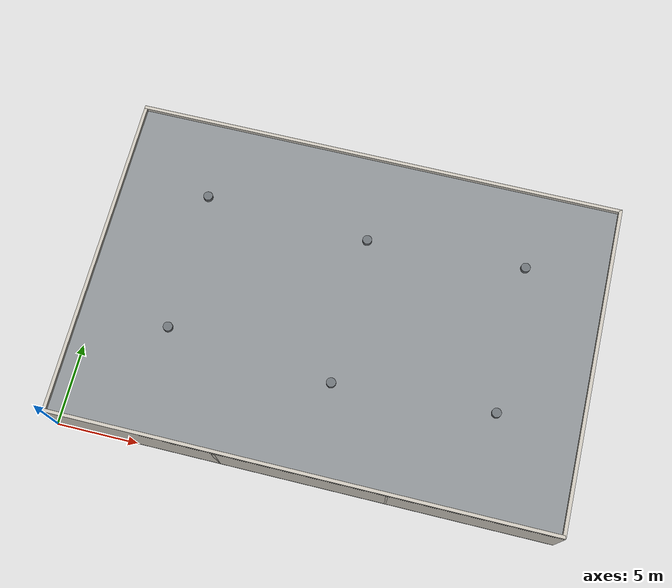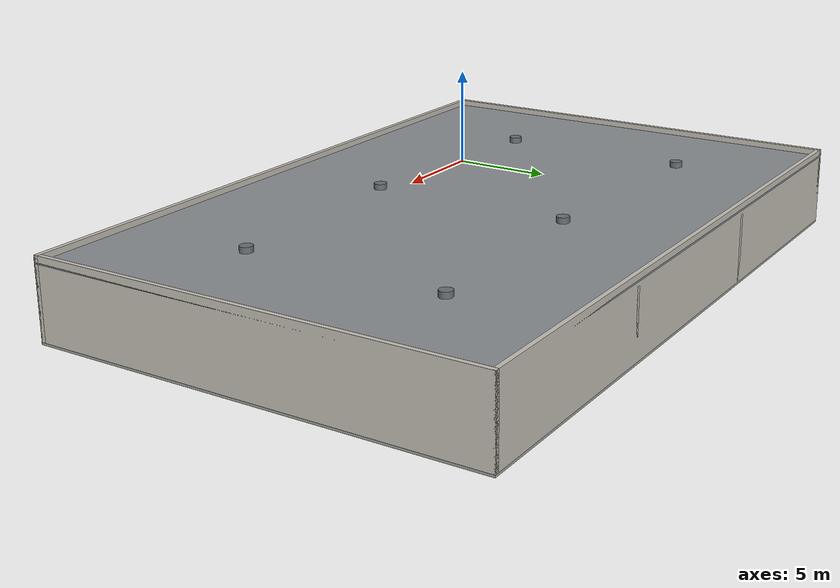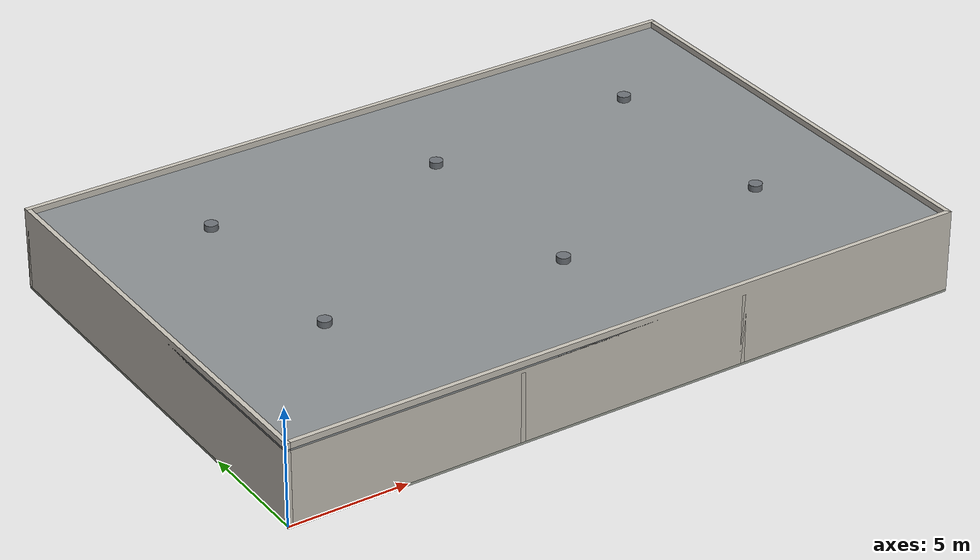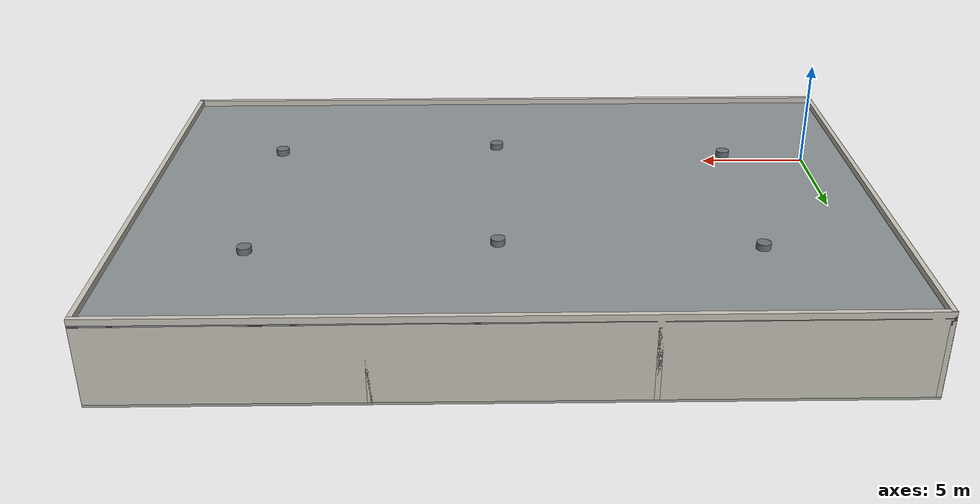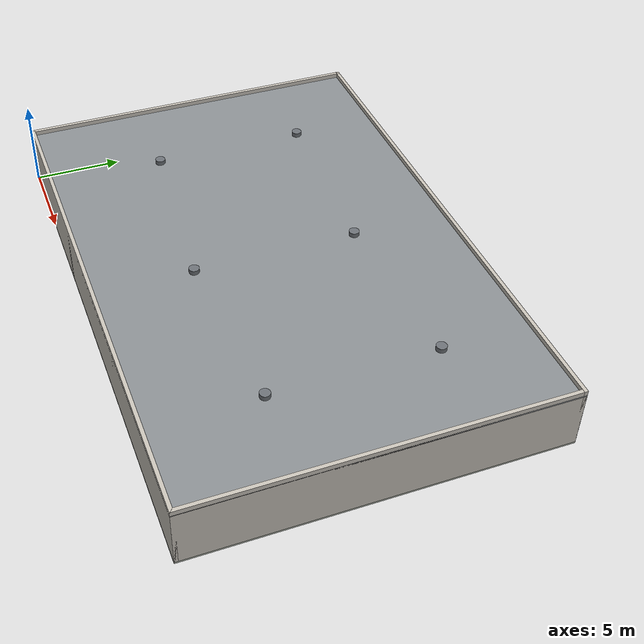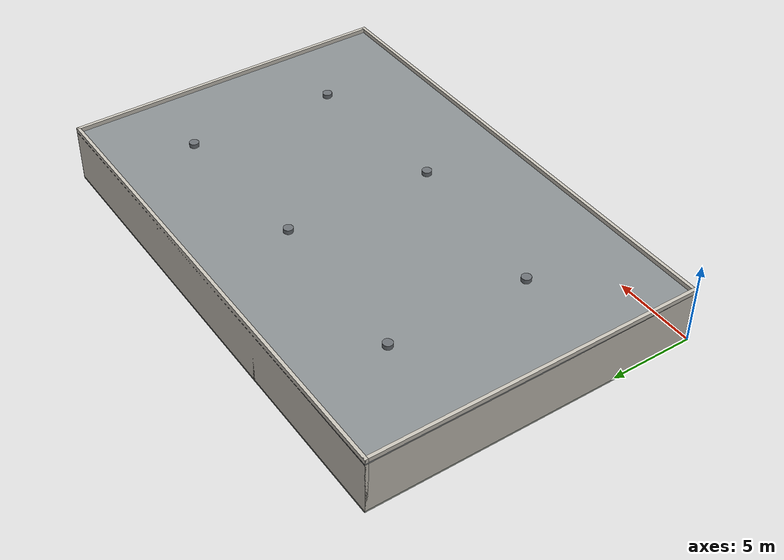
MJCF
<mujoco model="lingtu_industrial_demo">
  <compiler angle="radian" autolimits="true"/>
  <option gravity="0 0 -9.81" timestep="0.002" integrator="RK4"/>

  <visual>
    <headlight diffuse="0.65 0.65 0.62" ambient="0.35 0.35 0.35" specular="0.0 0.0 0.0"/>
    <rgba haze="0.12 0.15 0.18 1"/>
    <global azimuth="-45" elevation="-22" fovy="55"/>
  </visual>

  <asset>
    <material name="floor_mat" rgba=".62 .64 .60 1" shininess="0.02" specular="0.05"/>
    <material name="wall_mat" rgba=".78 .76 .72 1" shininess="0.02" specular="0.05"/>
    <material name="machine_mat" rgba=".25 .38 .46 1" shininess="0.06" specular="0.08"/>
    <material name="shelf_mat" rgba=".46 .34 .22 1" shininess="0.03" specular="0.05"/>
    <material name="barrel_mat" rgba=".70 .58 .12 1" shininess="0.04" specular="0.08"/>
    <material name="column_mat" rgba=".42 .44 .46 1" shininess="0.03" specular="0.05"/>
    <material name="robot_mat" rgba=".18 .38 .76 1"/>
    <material name="start_mat" rgba=".15 .78 .28 0.85"/>
    <material name="goal_mat" rgba=".90 .12 .12 0.90"/>
  </asset>

  <worldbody>
    <geom name="floor_main" type="box" pos="15 10 -0.05" size="15 10 0.05"
          material="floor_mat" conaffinity="1" condim="3"/>

    <geom name="wall_south" type="box" pos="15 0.10 1.75" size="15 0.10 1.75" material="wall_mat" conaffinity="1"/>
    <geom name="wall_north" type="box" pos="15 19.90 1.75" size="15 0.10 1.75" material="wall_mat" conaffinity="1"/>
    <geom name="wall_west" type="box" pos="0.10 10 1.75" size="0.10 10 1.75" material="wall_mat" conaffinity="1"/>
    <geom name="wall_east" type="box" pos="29.90 10 1.75" size="0.10 10 1.75" material="wall_mat" conaffinity="1"/>

    <geom name="roof_deck_main" type="box" pos="15.0 10.0 3.20" size="15.0 10.0 0.04"
          rgba=".54 .56 .57 1" conaffinity="1" condim="3"/>
    <geom name="roof_skylight_gap_a" type="box" pos="7.0 10.0 3.12" size="1.6 8.0 0.035"
          rgba=".68 .76 .82 1" conaffinity="1" condim="3"/>
    <geom name="roof_skylight_gap_b" type="box" pos="21.8 10.0 3.12" size="1.8 8.0 0.035"
          rgba=".68 .76 .82 1" conaffinity="1" condim="3"/>
    <geom name="beam_start_x" type="box" pos="4.8 3.4 2.35" size="2.4 0.08 0.08"
          material="column_mat" conaffinity="1" condim="3"/>
    <geom name="beam_start_y" type="box" pos="3.3 4.7 2.20" size="0.08 2.1 0.08"
          material="column_mat" conaffinity="1" condim="3"/>
    <geom name="beam_mid_x" type="box" pos="15.0 9.6 2.45" size="3.8 0.08 0.08"
          material="column_mat" conaffinity="1" condim="3"/>
    <geom name="beam_mid_y" type="box" pos="17.1 12.0 2.30" size="0.08 2.6 0.08"
          material="column_mat" conaffinity="1" condim="3"/>
    <geom name="beam_warehouse_x" type="box" pos="24.8 9.0 2.55" size="3.2 0.08 0.08"
          material="column_mat" conaffinity="1" condim="3"/>
    <geom name="beam_warehouse_y" type="box" pos="22.0 13.5 2.35" size="0.08 3.0 0.08"
          material="column_mat" conaffinity="1" condim="3"/>
    <geom name="pipe_run_a" type="cylinder" pos="6.0 10.0 2.65" size="0.07 8.5"
          euler="1.5708 0 0" material="column_mat" conaffinity="1" condim="3"/>
    <geom name="pipe_run_b" type="cylinder" pos="15.0 10.0 2.72" size="0.06 9.0"
          euler="1.5708 0 0" material="column_mat" conaffinity="1" condim="3"/>
    <geom name="pipe_run_c" type="cylinder" pos="24.0 10.0 2.68" size="0.07 8.5"
          euler="1.5708 0 0" material="column_mat" conaffinity="1" condim="3"/>
    <geom name="duct_start" type="box" pos="4.5 11.0 2.55" size="1.8 0.22 0.16"
          rgba=".42 .47 .48 1" conaffinity="1" condim="3"/>
    <geom name="duct_mid" type="box" pos="14.5 3.6 2.58" size="2.4 0.22 0.16"
          rgba=".42 .47 .48 1" conaffinity="1" condim="3"/>
    <geom name="duct_ship" type="box" pos="24.5 14.0 2.60" size="2.6 0.22 0.16"
          rgba=".42 .47 .48 1" conaffinity="1" condim="3"/>
    <geom name="ceiling_patch_start" type="box" pos="4.4 5.2 2.80" size="1.2 0.9 0.04"
          rgba=".52 .55 .57 1" conaffinity="1" condim="3"/>
    <geom name="ceiling_patch_mid" type="box" pos="15.8 11.2 2.90" size="1.6 1.0 0.04"
          rgba=".52 .55 .57 1" conaffinity="1" condim="3"/>

    <!-- Internal partitions with doors, creating three exploration zones. -->
    <geom name="partition_a_low" type="box" pos="10 2.0 1.50" size="0.10 2.0 1.50" material="wall_mat" conaffinity="1"/>
    <geom name="partition_a_mid" type="box" pos="10 10.5 1.50" size="0.10 3.5 1.50" material="wall_mat" conaffinity="1"/>
    <geom name="partition_a_high" type="box" pos="10 18.0 1.50" size="0.10 2.0 1.50" material="wall_mat" conaffinity="1"/>
    <geom name="partition_b_low" type="box" pos="20 4.0 1.50" size="0.10 4.0 1.50" material="wall_mat" conaffinity="1"/>
    <geom name="partition_b_high" type="box" pos="20 15.5 1.50" size="0.10 4.5 1.50" material="wall_mat" conaffinity="1"/>

    <!-- Structural columns break up long planar corridors. -->
    <geom name="col_1" type="cylinder" pos="5.5 6.5 1.75" size="0.28 1.75" material="column_mat" conaffinity="1"/>
    <geom name="col_2" type="cylinder" pos="5.5 15.0 1.75" size="0.28 1.75" material="column_mat" conaffinity="1"/>
    <geom name="col_3" type="cylinder" pos="15.5 5.5 1.75" size="0.28 1.75" material="column_mat" conaffinity="1"/>
    <geom name="col_4" type="cylinder" pos="15.5 14.5 1.75" size="0.28 1.75" material="column_mat" conaffinity="1"/>
    <geom name="col_5" type="cylinder" pos="25.0 6.0 1.75" size="0.28 1.75" material="column_mat" conaffinity="1"/>
    <geom name="col_6" type="cylinder" pos="25.0 15.0 1.75" size="0.28 1.75" material="column_mat" conaffinity="1"/>

    <!-- Start zone equipment. -->
    <geom name="starter_diag_guardrail_1" type="box" pos="4.20 4.95 0.85"
          euler="0 0 0.68" size="0.10 1.35 0.85" material="machine_mat"
          conaffinity="1" condim="3"/>
    <geom name="starter_diag_guardrail_2" type="box" pos="6.70 2.75 0.95"
          euler="0 0 -0.52" size="0.10 1.05 0.95" material="machine_mat"
          conaffinity="1" condim="3"/>
    <geom name="starter_short_rack" type="box" pos="3.20 1.85 0.75"
          euler="0 0 0.18" size="0.85 0.30 0.75" material="shelf_mat"
          conaffinity="1" condim="3"/>
    <geom name="starter_column_a" type="cylinder" pos="3.35 5.95 1.35"
          size="0.22 1.35" material="column_mat" conaffinity="1" condim="3"/>
    <geom name="starter_column_b" type="cylinder" pos="6.10 6.25 1.10"
          size="0.18 1.10" material="column_mat" conaffinity="1" condim="3"/>
    <geom name="starter_low_crate" type="box" pos="5.60 1.55 0.35"
          euler="0 0 -0.30" size="0.42 0.55 0.35" rgba=".35 .48 .55 1"
          conaffinity="1" condim="3"/>
    <geom name="crate_a1" type="box" pos="4.0 7.8 0.45" size="0.55 0.45 0.45" material="shelf_mat" conaffinity="1" condim="3"/>
    <geom name="crate_a2" type="box" pos="7.0 4.5 0.45" size="0.60 0.50 0.45" material="shelf_mat" conaffinity="1" condim="3"/>
    <geom name="barrel_a1" type="cylinder" pos="3.5 12.0 0.55" size="0.35 0.55" material="barrel_mat" conaffinity="1" condim="3"/>
    <geom name="shelf_a1" type="box" pos="7.2 16.6 0.90" size="1.25 0.45 0.90" material="shelf_mat" conaffinity="1" condim="3"/>

    <!-- Middle production area. -->
    <geom name="machine_b1" type="box" pos="14.2 8.5 0.85" size="1.60 0.75 0.85" material="machine_mat" conaffinity="1" condim="3"/>
    <geom name="machine_b1_top" type="box" pos="14.8 8.2 1.90" size="0.80 0.45 0.35" material="machine_mat" conaffinity="1" condim="3"/>
    <geom name="machine_b2" type="box" pos="17.3 12.4 0.70" size="0.75 1.55 0.70" material="machine_mat" conaffinity="1" condim="3"/>
    <geom name="belt_b1" type="box" pos="15.0 17.2 0.60" size="3.2 0.35 0.60" rgba=".18 .18 .18 1" conaffinity="1" condim="3"/>
    <geom name="barrel_b1" type="cylinder" pos="12.4 3.0 0.55" size="0.32 0.55" material="barrel_mat" conaffinity="1" condim="3"/>
    <geom name="barrel_b2" type="cylinder" pos="18.2 4.6 0.55" size="0.32 0.55" material="barrel_mat" conaffinity="1" condim="3"/>

    <!-- Warehouse / shipping zone. -->
    <geom name="rack_c1" type="box" pos="23.0 4.0 1.10" size="0.45 2.00 1.10" material="shelf_mat" conaffinity="1" condim="3"/>
    <geom name="rack_c2" type="box" pos="26.5 4.0 1.10" size="0.45 2.00 1.10" material="shelf_mat" conaffinity="1" condim="3"/>
    <geom name="rack_c3" type="box" pos="23.0 11.0 1.10" size="0.45 2.00 1.10" material="shelf_mat" conaffinity="1" condim="3"/>
    <geom name="rack_c4" type="box" pos="26.5 11.0 1.10" size="0.45 2.00 1.10" material="shelf_mat" conaffinity="1" condim="3"/>
    <geom name="pallet_c1" type="box" pos="22.8 17.0 0.18" size="0.80 0.60 0.18" material="shelf_mat" conaffinity="1" condim="3"/>
    <geom name="pallet_c2" type="box" pos="25.2 17.4 0.18" size="0.80 0.60 0.18" material="shelf_mat" conaffinity="1" condim="3"/>
    <geom name="crate_c1" type="box" pos="22.8 17.0 0.68" size="0.65 0.50 0.32" rgba=".55 .42 .28 1" conaffinity="1" condim="3"/>
    <geom name="crate_c2" type="box" pos="25.2 17.4 0.68" size="0.65 0.50 0.32" rgba=".35 .48 .55 1" conaffinity="1" condim="3"/>

    <geom name="start_disk" type="cylinder" pos="2.0 3.0 0.01" size="0.65 0.01"
          material="start_mat" conaffinity="0" contype="0"/>
    <geom name="goal_disk" type="cylinder" pos="27.0 17.5 0.01" size="0.65 0.01"
          material="goal_mat" conaffinity="0" contype="0"/>

    <body name="robot_placeholder" pos="2.0 3.0 0.50">
      <freejoint name="robot_root"/>
      <geom name="chassis" type="box" size="0.42 0.28 0.10"
            material="robot_mat" mass="22" conaffinity="1"/>
      <inertial pos="0 0 0" mass="22" diaginertia="0.78 1.18 1.18"/>
    </body>

    <light name="sun" pos="12 -6 24" dir="-.2 .2 -1" diffuse=".75 .75 .70" specular=".08 .08 .08"/>
    <light name="fill_1" pos="8 16 8" dir=".2 -.5 -1" diffuse=".30 .32 .34"/>
    <light name="fill_2" pos="25 8 8" dir="-.5 .1 -1" diffuse=".28 .28 .25"/>
  </worldbody>
</mujoco>
